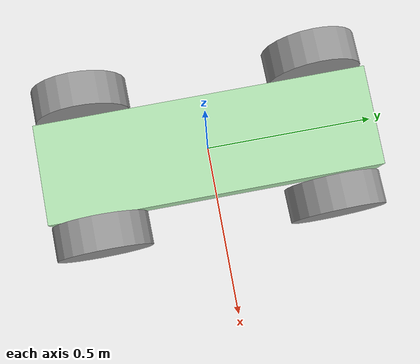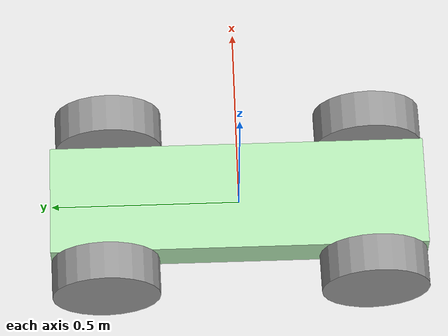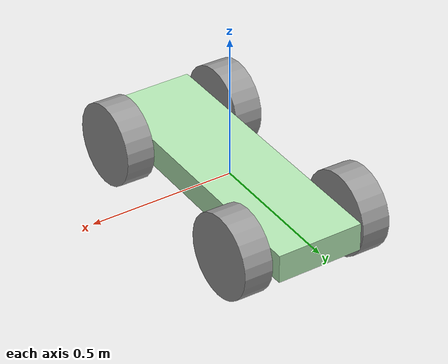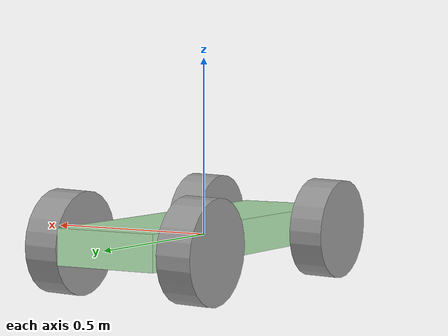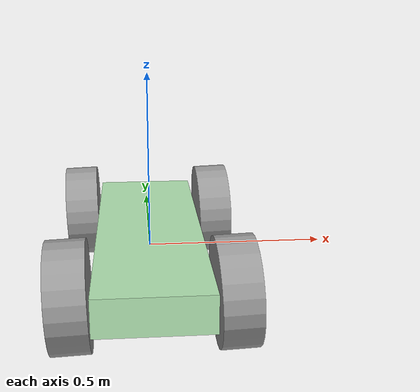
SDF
<?xml version='1.0'?>
<sdf version='1.7'>
  <model name='car-green-4wheels'>
    <link name='link_0'>
      <inertial>
        <mass>0.0219826</mass>
        <inertia>
          <ixx>0.00038365</ixx>
          <ixy>0</ixy>
          <ixz>0</ixz>
          <iyy>0.00050719</iyy>
          <iyz>0</iyz>
          <izz>0.00085783</izz>
        </inertia>
        <pose>0 0 0 0 -0 0</pose>
      </inertial>
      <pose>-0.001968 0.002172 0.003706 0 -0 0</pose>
      <gravity>1</gravity>
      <self_collide>0</self_collide>
      <kinematic>0</kinematic>
      <enable_wind>0</enable_wind>
      <visual name='visual'>
        <pose>0 0 0 0 -0 0</pose>
        <geometry>
          <box>
            <size>0.3 1 0.1</size>
          </box>
        </geometry>
        <material>
          <lighting>1</lighting>
          <script>
            <uri>file://media/materials/scripts/gazebo.material</uri>
            <name>Gazebo/Grey</name>
          </script>
          <shader type='pixel'>
            <normal_map>__default__</normal_map>
          </shader>
          <ambient>0.3 1 0.5 1</ambient>
          <diffuse>0.7 0.9 0.7 1</diffuse>
          <specular>0.2 0.01 0.01 1</specular>
          <emissive>0 0 0 1</emissive>
        </material>
        <transparency>0</transparency>
        <cast_shadows>1</cast_shadows>
      </visual>
      <collision name='collision'>
        <laser_retro>0</laser_retro>
        <max_contacts>10</max_contacts>
        <pose>0 0 0 0 -0 0</pose>
        <geometry>
          <box>
            <size>0.3 1 0.1</size>
          </box>
        </geometry>
        <surface>
          <friction>
            <ode>
              <mu>1</mu>
              <mu2>1</mu2>
              <fdir1>0 0 0</fdir1>
              <slip1>0</slip1>
              <slip2>0</slip2>
            </ode>
            <torsional>
              <coefficient>1</coefficient>
              <patch_radius>0</patch_radius>
              <surface_radius>0</surface_radius>
              <use_patch_radius>1</use_patch_radius>
              <ode>
                <slip>0</slip>
              </ode>
            </torsional>
          </friction>
          <bounce>
            <restitution_coefficient>0</restitution_coefficient>
            <threshold>1e+06</threshold>
          </bounce>
          <contact>
            <collide_without_contact>0</collide_without_contact>
            <collide_without_contact_bitmask>1</collide_without_contact_bitmask>
            <collide_bitmask>1</collide_bitmask>
            <ode>
              <soft_cfm>0</soft_cfm>
              <soft_erp>0.2</soft_erp>
              <kp>1e+13</kp>
              <kd>1</kd>
              <max_vel>0.01</max_vel>
              <min_depth>0</min_depth>
            </ode>
            <bullet>
              <split_impulse>1</split_impulse>
              <split_impulse_penetration_threshold>-0.01</split_impulse_penetration_threshold>
              <soft_cfm>0</soft_cfm>
              <soft_erp>0.2</soft_erp>
              <kp>1e+13</kp>
              <kd>1</kd>
            </bullet>
          </contact>
        </surface>
      </collision>
    </link>
    <link name='link_1'>
      <inertial>
        <mass>0.5136</mass>
        <inertia>
          <ixx>0.00306582</ixx>
          <ixy>0</ixy>
          <ixz>0</ixz>
          <iyy>0.00306582</iyy>
          <iyz>0</iyz>
          <izz>0.00527564</izz>
        </inertia>
        <pose>0 0 0 0 -0 0</pose>
      </inertial>
      <pose>0.215012 0.346732 -0.000926 1.53846 -0.002177 1.58846</pose>
      <gravity>1</gravity>
      <self_collide>0</self_collide>
      <kinematic>0</kinematic>
      <enable_wind>0</enable_wind>
      <visual name='visual'>
        <pose>0 0 0 0 -0 0</pose>
        <geometry>
          <cylinder>
            <radius>0.143331</radius>
            <length>0.1</length>
          </cylinder>
        </geometry>
        <material>
          <lighting>1</lighting>
          <script>
            <uri>file://media/materials/scripts/gazebo.material</uri>
            <name>Gazebo/Grey</name>
          </script>
          <shader type='pixel'>
            <normal_map>__default__</normal_map>
          </shader>
          <ambient>0.3 0.3 0.3 1</ambient>
          <diffuse>0.7 0.7 0.7 1</diffuse>
          <specular>0.01 0.01 0.01 1</specular>
          <emissive>0 0 0 1</emissive>
        </material>
        <transparency>0</transparency>
        <cast_shadows>1</cast_shadows>
      </visual>
      <collision name='collision'>
        <laser_retro>0</laser_retro>
        <max_contacts>10</max_contacts>
        <pose>0 0 0 0 -0 0</pose>
        <geometry>
          <cylinder>
            <radius>0.143331</radius>
            <length>0.1</length>
          </cylinder>
        </geometry>
        <surface>
          <friction>
            <ode>
              <mu>1</mu>
              <mu2>1</mu2>
              <fdir1>0 0 0</fdir1>
              <slip1>0</slip1>
              <slip2>0</slip2>
            </ode>
            <torsional>
              <coefficient>1</coefficient>
              <patch_radius>0</patch_radius>
              <surface_radius>0</surface_radius>
              <use_patch_radius>1</use_patch_radius>
              <ode>
                <slip>0</slip>
              </ode>
            </torsional>
          </friction>
          <bounce>
            <restitution_coefficient>0</restitution_coefficient>
            <threshold>1e+06</threshold>
          </bounce>
          <contact>
            <collide_without_contact>0</collide_without_contact>
            <collide_without_contact_bitmask>1</collide_without_contact_bitmask>
            <collide_bitmask>1</collide_bitmask>
            <ode>
              <soft_cfm>0</soft_cfm>
              <soft_erp>0.2</soft_erp>
              <kp>1e+13</kp>
              <kd>1</kd>
              <max_vel>0.01</max_vel>
              <min_depth>0</min_depth>
            </ode>
            <bullet>
              <split_impulse>1</split_impulse>
              <split_impulse_penetration_threshold>-0.01</split_impulse_penetration_threshold>
              <soft_cfm>0</soft_cfm>
              <soft_erp>0.2</soft_erp>
              <kp>1e+13</kp>
              <kd>1</kd>
            </bullet>
          </contact>
        </surface>
      </collision>
    </link>
    <link name='link_1_clone'>
      <inertial>
        <mass>0.5136</mass>
        <inertia>
          <ixx>0.00306582</ixx>
          <ixy>0</ixy>
          <ixz>0</ixz>
          <iyy>0.00306582</iyy>
          <iyz>0</iyz>
          <izz>0.00527564</izz>
        </inertia>
        <pose>0 0 0 0 -0 0</pose>
      </inertial>
      <pose>0.205152 -0.353248 -0.000926 1.53846 -0.002177 1.58846</pose>
      <gravity>1</gravity>
      <self_collide>0</self_collide>
      <kinematic>0</kinematic>
      <enable_wind>0</enable_wind>
      <visual name='visual'>
        <pose>0 0 0 0 -0 0</pose>
        <geometry>
          <cylinder>
            <radius>0.143331</radius>
            <length>0.1</length>
          </cylinder>
        </geometry>
        <material>
          <lighting>1</lighting>
          <script>
            <uri>file://media/materials/scripts/gazebo.material</uri>
            <name>Gazebo/Grey</name>
          </script>
          <shader type='pixel'>
            <normal_map>__default__</normal_map>
          </shader>
          <ambient>0 0 0 1</ambient>
          <diffuse>0 0 0 1</diffuse>
          <specular>0.01 0.01 0.01 1</specular>
          <emissive>0 0 0 1</emissive>
        </material>
        <transparency>0</transparency>
        <cast_shadows>1</cast_shadows>
      </visual>
      <collision name='collision'>
        <laser_retro>0</laser_retro>
        <max_contacts>10</max_contacts>
        <pose>0 0 0 0 -0 0</pose>
        <geometry>
          <cylinder>
            <radius>0.143331</radius>
            <length>0.1</length>
          </cylinder>
        </geometry>
        <surface>
          <friction>
            <ode>
              <mu>1</mu>
              <mu2>1</mu2>
              <fdir1>0 0 0</fdir1>
              <slip1>0</slip1>
              <slip2>0</slip2>
            </ode>
            <torsional>
              <coefficient>1</coefficient>
              <patch_radius>0</patch_radius>
              <surface_radius>0</surface_radius>
              <use_patch_radius>1</use_patch_radius>
              <ode>
                <slip>0</slip>
              </ode>
            </torsional>
          </friction>
          <bounce>
            <restitution_coefficient>0</restitution_coefficient>
            <threshold>1e+06</threshold>
          </bounce>
          <contact>
            <collide_without_contact>0</collide_without_contact>
            <collide_without_contact_bitmask>1</collide_without_contact_bitmask>
            <collide_bitmask>1</collide_bitmask>
            <ode>
              <soft_cfm>0</soft_cfm>
              <soft_erp>0.2</soft_erp>
              <kp>1e+13</kp>
              <kd>1</kd>
              <max_vel>0.01</max_vel>
              <min_depth>0</min_depth>
            </ode>
            <bullet>
              <split_impulse>1</split_impulse>
              <split_impulse_penetration_threshold>-0.01</split_impulse_penetration_threshold>
              <soft_cfm>0</soft_cfm>
              <soft_erp>0.2</soft_erp>
              <kp>1e+13</kp>
              <kd>1</kd>
            </bullet>
          </contact>
        </surface>
      </collision>
    </link>
    <link name='link_1_clone_0'>
      <inertial>
        <mass>0.5136</mass>
        <inertia>
          <ixx>0.00306582</ixx>
          <ixy>0</ixy>
          <ixz>0</ixz>
          <iyy>0.00306582</iyy>
          <iyz>0</iyz>
          <izz>0.00527564</izz>
        </inertia>
        <pose>0 0 0 0 -0 0</pose>
      </inertial>
      <pose>-0.209094 0.357591 -0.000926 1.53846 -0.002177 1.58846</pose>
      <gravity>1</gravity>
      <self_collide>0</self_collide>
      <kinematic>0</kinematic>
      <enable_wind>0</enable_wind>
      <visual name='visual'>
        <pose>0 0 0 0 -0 0</pose>
        <geometry>
          <cylinder>
            <radius>0.143331</radius>
            <length>0.1</length>
          </cylinder>
        </geometry>
        <material>
          <lighting>1</lighting>
          <script>
            <uri>file://media/materials/scripts/gazebo.material</uri>
            <name>Gazebo/Grey</name>
          </script>
          <shader type='pixel'>
            <normal_map>__default__</normal_map>
          </shader>
          <ambient>0.3 0.3 0.3 1</ambient>
          <diffuse>0.7 0.7 0.7 1</diffuse>
          <specular>0.01 0.01 0.01 1</specular>
          <emissive>0 0 0 1</emissive>
        </material>
        <transparency>0</transparency>
        <cast_shadows>1</cast_shadows>
      </visual>
      <collision name='collision'>
        <laser_retro>0</laser_retro>
        <max_contacts>10</max_contacts>
        <pose>0 0 0 0 -0 0</pose>
        <geometry>
          <cylinder>
            <radius>0.143331</radius>
            <length>0.1</length>
          </cylinder>
        </geometry>
        <surface>
          <friction>
            <ode>
              <mu>1</mu>
              <mu2>1</mu2>
              <fdir1>0 0 0</fdir1>
              <slip1>0</slip1>
              <slip2>0</slip2>
            </ode>
            <torsional>
              <coefficient>1</coefficient>
              <patch_radius>0</patch_radius>
              <surface_radius>0</surface_radius>
              <use_patch_radius>1</use_patch_radius>
              <ode>
                <slip>0</slip>
              </ode>
            </torsional>
          </friction>
          <bounce>
            <restitution_coefficient>0</restitution_coefficient>
            <threshold>1e+06</threshold>
          </bounce>
          <contact>
            <collide_without_contact>0</collide_without_contact>
            <collide_without_contact_bitmask>1</collide_without_contact_bitmask>
            <collide_bitmask>1</collide_bitmask>
            <ode>
              <soft_cfm>0</soft_cfm>
              <soft_erp>0.2</soft_erp>
              <kp>1e+13</kp>
              <kd>1</kd>
              <max_vel>0.01</max_vel>
              <min_depth>0</min_depth>
            </ode>
            <bullet>
              <split_impulse>1</split_impulse>
              <split_impulse_penetration_threshold>-0.01</split_impulse_penetration_threshold>
              <soft_cfm>0</soft_cfm>
              <soft_erp>0.2</soft_erp>
              <kp>1e+13</kp>
              <kd>1</kd>
            </bullet>
          </contact>
        </surface>
      </collision>
    </link>
    <link name='link_1_clone_clone'>
      <inertial>
        <mass>0.5136</mass>
        <inertia>
          <ixx>0.00306582</ixx>
          <ixy>0</ixy>
          <ixz>0</ixz>
          <iyy>0.00306582</iyy>
          <iyz>0</iyz>
          <izz>0.00527564</izz>
        </inertia>
        <pose>0 0 0 0 -0 0</pose>
      </inertial>
      <pose>-0.209094 -0.353246 -0.000926 1.53846 -0.002177 1.58846</pose>
      <gravity>1</gravity>
      <self_collide>0</self_collide>
      <kinematic>0</kinematic>
      <enable_wind>0</enable_wind>
      <visual name='visual'>
        <pose>0 0 0 0 -0 0</pose>
        <geometry>
          <cylinder>
            <radius>0.143331</radius>
            <length>0.1</length>
          </cylinder>
        </geometry>
        <material>
          <lighting>1</lighting>
          <script>
            <uri>file://media/materials/scripts/gazebo.material</uri>
            <name>Gazebo/Grey</name>
          </script>
          <shader type='pixel'>
            <normal_map>__default__</normal_map>
          </shader>
          <ambient>0 0 0 1</ambient>
          <diffuse>0 0 0 1</diffuse>
          <specular>0.01 0.01 0.01 1</specular>
          <emissive>0 0 0 1</emissive>
        </material>
        <transparency>0</transparency>
        <cast_shadows>1</cast_shadows>
      </visual>
      <collision name='collision'>
        <laser_retro>0</laser_retro>
        <max_contacts>10</max_contacts>
        <pose>0 0 0 0 -0 0</pose>
        <geometry>
          <cylinder>
            <radius>0.143331</radius>
            <length>0.1</length>
          </cylinder>
        </geometry>
        <surface>
          <friction>
            <ode>
              <mu>1</mu>
              <mu2>1</mu2>
              <fdir1>0 0 0</fdir1>
              <slip1>0</slip1>
              <slip2>0</slip2>
            </ode>
            <torsional>
              <coefficient>1</coefficient>
              <patch_radius>0</patch_radius>
              <surface_radius>0</surface_radius>
              <use_patch_radius>1</use_patch_radius>
              <ode>
                <slip>0</slip>
              </ode>
            </torsional>
          </friction>
          <bounce>
            <restitution_coefficient>0</restitution_coefficient>
            <threshold>1e+06</threshold>
          </bounce>
          <contact>
            <collide_without_contact>0</collide_without_contact>
            <collide_without_contact_bitmask>1</collide_without_contact_bitmask>
            <collide_bitmask>1</collide_bitmask>
            <ode>
              <soft_cfm>0</soft_cfm>
              <soft_erp>0.2</soft_erp>
              <kp>1e+13</kp>
              <kd>1</kd>
              <max_vel>0.01</max_vel>
              <min_depth>0</min_depth>
            </ode>
            <bullet>
              <split_impulse>1</split_impulse>
              <split_impulse_penetration_threshold>-0.01</split_impulse_penetration_threshold>
              <soft_cfm>0</soft_cfm>
              <soft_erp>0.2</soft_erp>
              <kp>1e+13</kp>
              <kd>1</kd>
            </bullet>
          </contact>
        </surface>
      </collision>
    </link>
    <joint name='link_0_JOINT_0' type='revolute'>
      <parent>link_0</parent>
      <child>link_1</child>
      <pose>0 0 0 0 -0 0</pose>
      <axis>
        <xyz>0 0 1</xyz>
        <limit>
          <lower>-1.79769e+308</lower>
          <upper>1.79769e+308</upper>
          <effort>-1</effort>
          <velocity>-1</velocity>
        </limit>
        <dynamics>
          <spring_reference>0</spring_reference>
          <spring_stiffness>0</spring_stiffness>
          <damping>0</damping>
        </dynamics>
      </axis>
      <physics>
        <ode>
          <limit>
            <cfm>0</cfm>
            <erp>0.2</erp>
          </limit>
          <suspension>
            <cfm>0</cfm>
            <erp>0.2</erp>
          </suspension>
        </ode>
      </physics>
    </joint>
    <joint name='link_0_JOINT_1' type='revolute'>
      <parent>link_0</parent>
      <child>link_1_clone</child>
      <pose>0 0 0 0 -0 0</pose>
      <axis>
        <xyz>0 0 1</xyz>
        <limit>
          <lower>-1.79769e+308</lower>
          <upper>1.79769e+308</upper>
          <effort>-1</effort>
          <velocity>-1</velocity>
        </limit>
        <dynamics>
          <spring_reference>0</spring_reference>
          <spring_stiffness>0</spring_stiffness>
          <damping>0</damping>
        </dynamics>
      </axis>
      <physics>
        <ode>
          <limit>
            <cfm>0</cfm>
            <erp>0.2</erp>
          </limit>
          <suspension>
            <cfm>0</cfm>
            <erp>0.2</erp>
          </suspension>
        </ode>
      </physics>
    </joint>
    <joint name='link_0_JOINT_2' type='revolute'>
      <parent>link_0</parent>
      <child>link_1_clone_clone</child>
      <pose>0 0 0 0 -0 0</pose>
      <axis>
        <xyz>0 0 1</xyz>
        <limit>
          <lower>-1.79769e+308</lower>
          <upper>1.79769e+308</upper>
          <effort>-1</effort>
          <velocity>-1</velocity>
        </limit>
        <dynamics>
          <spring_reference>0</spring_reference>
          <spring_stiffness>0</spring_stiffness>
          <damping>0</damping>
        </dynamics>
      </axis>
      <physics>
        <ode>
          <limit>
            <cfm>0</cfm>
            <erp>0.2</erp>
          </limit>
          <suspension>
            <cfm>0</cfm>
            <erp>0.2</erp>
          </suspension>
        </ode>
      </physics>
    </joint>
    <joint name='link_0_JOINT_3' type='revolute'>
      <parent>link_0</parent>
      <child>link_1_clone_0</child>
      <pose>0 0 0 0 -0 0</pose>
      <axis>
        <xyz>0 0 1</xyz>
        <limit>
          <lower>-1.79769e+308</lower>
          <upper>1.79769e+308</upper>
          <effort>-1</effort>
          <velocity>-1</velocity>
        </limit>
        <dynamics>
          <spring_reference>0</spring_reference>
          <spring_stiffness>0</spring_stiffness>
          <damping>0</damping>
        </dynamics>
      </axis>
      <physics>
        <ode>
          <limit>
            <cfm>0</cfm>
            <erp>0.2</erp>
          </limit>
          <suspension>
            <cfm>0</cfm>
            <erp>0.2</erp>
          </suspension>
        </ode>
      </physics>
    </joint>
    <static>0</static>
    <allow_auto_disable>1</allow_auto_disable>
  </model>
</sdf>
